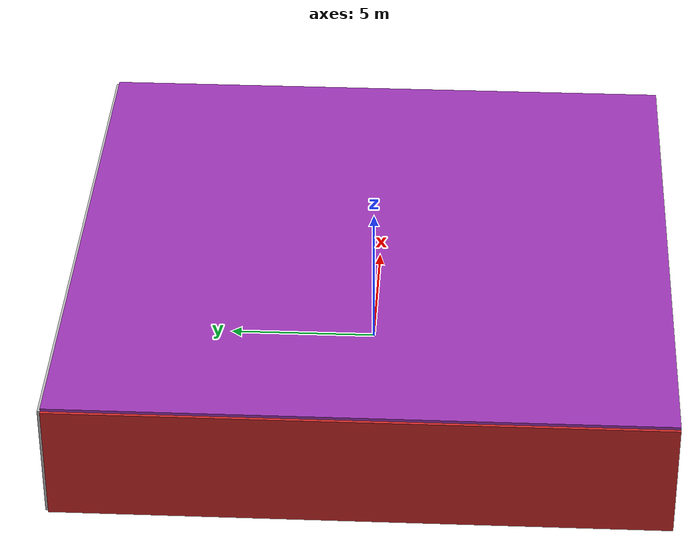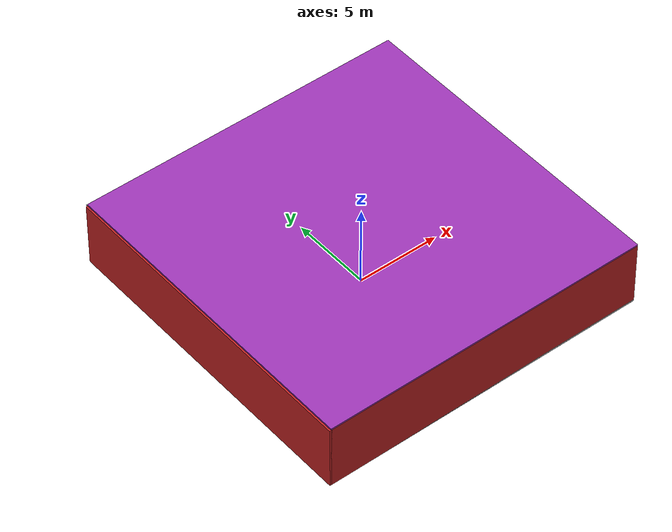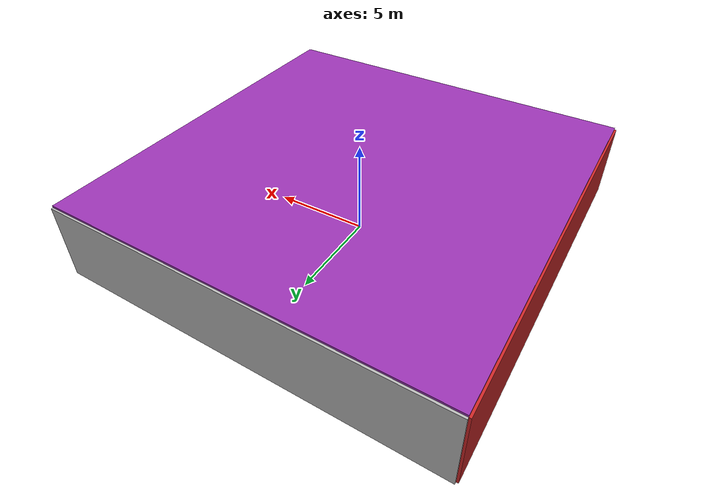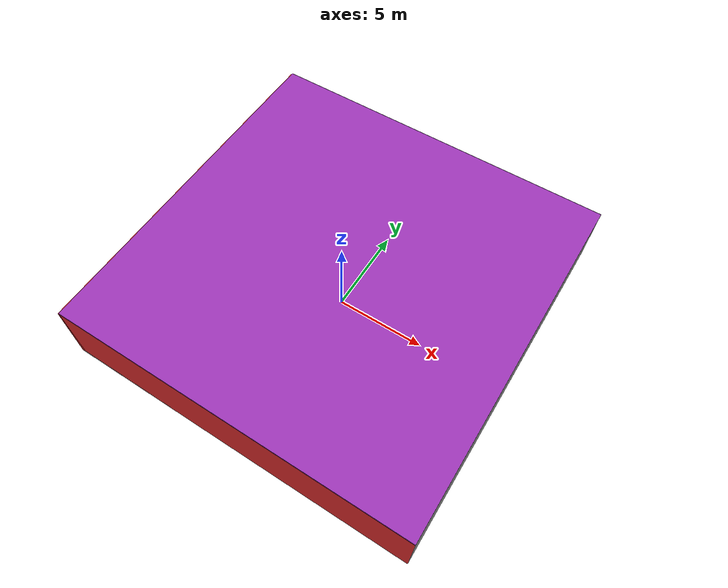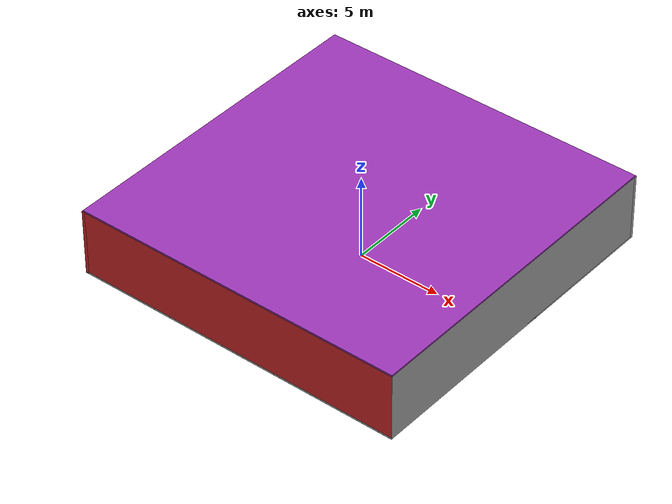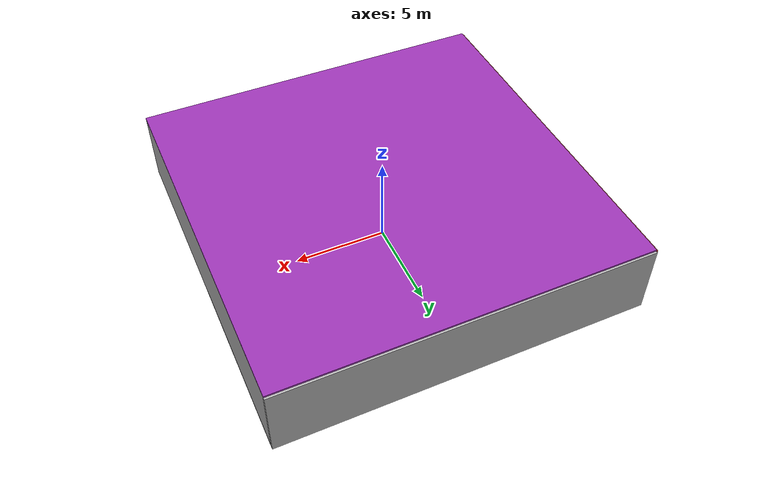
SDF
<sdf version="1.4">
 <world name="default">
  <physics type="ode">
   <max_step_size>0.001</max_step_size>
   <real_time_factor>1</real_time_factor>
   <real_time_update_rate>1000</real_time_update_rate>
   <gravity>0 0 -9.8</gravity>
  </physics>
  <scene><ambient>0.4 0.4 0.4 1</ambient><background>0.7 0.7 0.7 1</background><shadows>1</shadows></scene>
  <model name="Surrounding">
   <static>1</static>
   <link name="Ceiling">
    <collision name="Ceiling_Collision"><geometry><box><size>20 20 0.1</size></box></geometry></collision>
    <visual name="Ceiling_Visual">
     <geometry><box><size>20 20 0.1</size></box></geometry>
     <material>
      <script><uri>file://media/materials/scripts/gazebo.material</uri><name>Gazebo/PurpleGlow</name></script>
     </material>
    </visual>
    <pose>0 0 4.05 0 0 0</pose>
   </link>
   <link name="Wall_South">
    <collision name="Wall_South_Collision">
     <geometry><box><size>20 0 4</size></box></geometry>
     <pose>0 0 2 0 -0 0</pose>
    </collision>
    <visual name="Wall_South_Visual">
     <pose>0 0 2 0 -0 0</pose>
     <geometry><box><size>20 0 4</size></box></geometry>
     <material>
      <script><uri>file://media/materials/scripts/gazebo.material</uri><name>Gazebo/Red</name></script>
     </material>
    </visual>
    <velocity_decay><linear>0</linear><angular>0</angular></velocity_decay>
    <pose>0 -10 0 0 -0 0</pose>
   </link>
   <link name="Wall_East">
    <collision name="Wall_21_Collision">
     <geometry><box><size>20 0 4</size></box></geometry>
     <pose>0 0 2 0 -0 0</pose>
    </collision>
    <visual name="Wall_21_Visual">
     <pose>0 0 2 0 -0 0</pose>
     <geometry><box><size>20 0 4</size></box></geometry>
     <material>
      <script><uri>file://media/materials/scripts/gazebo.material</uri><name>Gazebo/Pioneer2Body</name></script>
     </material>
    </visual>
    <velocity_decay><linear>0</linear><angular>0</angular></velocity_decay>
    <pose>10 0 0 0 -0 1.5708</pose>
   </link>
   <link name="Wall_North">
    <collision name="Wall_22_Collision">
     <geometry><box><size>20 0.2 4</size></box></geometry>
     <pose>0 0 2 0 -0 0</pose>
    </collision>
    <visual name="Wall_22_Visual">
     <pose>0 0 2 0 -0 0</pose>
     <geometry><box><size>20 0.2 4</size></box></geometry>
     <material>
      <script><uri>file://media/materials/scripts/gazebo.material</uri><name>Gazebo/Pioneer2Body</name></script>
     </material>
    </visual>
    <velocity_decay><linear>0</linear><angular>0</angular></velocity_decay>
    <pose>0 10 0 0 -0 0</pose>
   </link>
   <link name="Wall_West">
    <collision name="Wall_23_Collision">
     <geometry><box><size>20 0.2 4</size></box></geometry>
     <pose>0 0 2 0 -0 0</pose>
    </collision>
    <visual name="Wall_23_Visual">
     <pose>0 0 2 0 -0 0</pose>
     <geometry><box><size>20 0.2 4</size></box></geometry>
     <material>
      <script><uri>file://media/materials/scripts/gazebo.material</uri><name>Gazebo/RedGlow</name></script>
     </material>
    </visual>
    <velocity_decay><linear>0</linear><angular>0</angular></velocity_decay>
    <pose>-10 0 0 0 0 -1.5708</pose>
   </link>
   <link name="Ground_link">
    <collision name="collision">
     <pose>0 0 .05 0 -0 0</pose>
     <geometry><box><size>20 20 0.1</size></box></geometry>
    </collision>
    <visual name="visual">
     <pose>0 0 .05 0 -0 0</pose>
     <geometry><box><size>20 20 0.1</size></box></geometry>
     <material>
      <script><uri>file://media/materials/scripts/gazebo.material</uri><name>Gazebo/CloudySky</name></script>
     </material>
    </visual>
   </link>
   <static>1</static>
  </model>
  <spherical_coordinates>
   <surface_model>EARTH_WGS84</surface_model>
   <latitude_deg>0</latitude_deg>
   <longitude_deg>0</longitude_deg>
   <elevation>0</elevation>
   <heading_deg>0</heading_deg>
  </spherical_coordinates>
  <light name="lightball_0" type="diffuse">
   <diffuse>0.8 0.8 0.8 1</diffuse>
   <specular>0.2 0.2 0.2 1</specular>
   <attenuation>
    <range>100</range>
    <constant>0.7</constant>
    <linear>0.01</linear>
    <quadratic>0.001</quadratic>
   </attenuation>
   <direction>-0.5 0.1 -0.9</direction>
   <pose>-1.57015566383 -0.627600583861 2.82952394799 0 0 0</pose>
  </light>
  <light name="lightball_1" type="diffuse">
   <diffuse>0.8 0.8 0.8 1</diffuse>
   <specular>0.2 0.2 0.2 1</specular>
   <attenuation>
    <range>100</range>
    <constant>0.7</constant>
    <linear>0.01</linear>
    <quadratic>0.001</quadratic>
   </attenuation>
   <direction>-0.5 0.1 -0.9</direction>
   <pose>-6.54540657948 3.73975154319 3.07185542808 0 0 0</pose>
  </light>
  <light name="lightball_2" type="diffuse">
   <diffuse>0.8 0.8 0.8 1</diffuse>
   <specular>0.2 0.2 0.2 1</specular>
   <attenuation>
    <range>100</range>
    <constant>0.7</constant>
    <linear>0.01</linear>
    <quadratic>0.001</quadratic>
   </attenuation>
   <direction>-0.5 0.1 -0.9</direction>
   <pose>1.90729185153 0.548144415849 2.17242869062 0 0 0</pose>
  </light>
  <light name="lightball_3" type="diffuse">
   <diffuse>0.8 0.8 0.8 1</diffuse>
   <specular>0.2 0.2 0.2 1</specular>
   <attenuation>
    <range>100</range>
    <constant>0.7</constant>
    <linear>0.01</linear>
    <quadratic>0.001</quadratic>
   </attenuation>
   <direction>-0.5 0.1 -0.9</direction>
   <pose>4.02318149444 -4.22561937383 0.774344688395 0 0 0</pose>
  </light>
  <include><uri>model://cabinet</uri><pose>-6.7453710752 -4.11502978925 0 0 0 1.58683391974</pose></include>
  <include>
   <uri>model://textured_shapes</uri>
   <pose>-1.42108064902 1.94973149716 0 0 0 0.111787628685</pose>
  </include>
  <include><uri>model://table</uri><pose>1.09596841941 5.12305537652 0 0 0 2.61324811277</pose></include>
  <include>
   <uri>model://construction_cone</uri>
   <pose>1.91371186131 7.57809168568 0 0 0 0.0142127491015</pose>
  </include>
  <include>
   <uri>model://textured_shapes</uri>
   <pose>3.98268754775 -6.74912755654 0 0 0 1.31142138198</pose>
  </include>
  <include><uri>model://cabinet</uri><pose>5.24008828502 7.54379888707 0 0 0 1.86743783254</pose></include>
  <include>
   <uri>model://robocup_3Dsim_goal</uri>
   <pose>7.4527373637 -4.06436830562 0 0 0 2.71705635266</pose>
  </include>
  <include>
   <uri>model://construction_cone</uri>
   <pose>8.08524084754 1.56320882617 0 0 0 1.58210167667</pose>
  </include>
 </world>
</sdf>

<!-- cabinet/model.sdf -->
<sdf version="1.5">
  <model name="cabinet">
    <static>true</static>
    <link name="cabinet_bottom_plate">
      <inertial>
        <pose>0 0 -1 0 0 0</pose>
        <inertia>
          <ixx>2.050000</ixx>
          <ixy>0</ixy>
          <ixz>0</ixz>
          <iyy>2.050000</iyy>
          <iyz>0</iyz>
          <izz>2.050000</izz>
        </inertia>
        <mass>25.000000</mass>
      </inertial>
      <collision name="cabinet_bottom_plate_geom">
        <pose>0 0 0.010000 0 0 0</pose>
        <geometry>
          <box>
            <size>0.450000 0.450000 0.020000</size>
          </box>
        </geometry>
      </collision>
      <visual name="cabinet_bottom_plate_geom_visual">
        <pose>0 0 0.010000 0 0 0</pose>
        <geometry>
          <box>
            <size>0.450000 0.450000 0.020000</size>
          </box>
        </geometry>
        <material>
          <script>
            <uri>model://media/materials/scripts/gazebo.material</uri>
            <name>Gazebo/Wood</name>
          </script>
        </material>
      </visual>
      <collision name="cabinet_bottom_plate_geom_cabinet_back_plate">
        <pose>0.235000 0 0.510000 0 0 0</pose>
        <geometry>
          <box>
            <size>0.020000 0.450000 1.020000</size>
          </box>
        </geometry>
      </collision>
      <visual name="cabinet_bottom_plate_geom_cabinet_back_plate_visual">
        <pose>0.235000 0 0.510000 0 0 0</pose>
        <geometry>
          <box>
            <size>0.020000 0.450000 1.020000</size>
          </box>
        </geometry>
        <material>
          <script>
            <uri>model://media/materials/scripts/gazebo.material</uri>
            <name>Gazebo/Wood</name>
          </script>
        </material>
      </visual>
      <collision name="cabinet_bottom_plate_geom_cabinet_left_plate">
        <pose>0 0.235000 0.510000 0 0 0</pose>
        <geometry>
          <box>
            <size>0.450000 0.020000 1.020000</size>
          </box>
        </geometry>
      </collision>
      <visual name="cabinet_bottom_plate_geom_cabinet_left_plate_visual">
        <pose>0 0.235000 0.510000 0 0 0</pose>
        <geometry>
          <box>
            <size>0.450000 0.020000 1.020000</size>
          </box>
        </geometry>
        <material>
          <script>
            <uri>model://media/materials/scripts/gazebo.material</uri>
            <name>Gazebo/Wood</name>
          </script>
        </material>
      </visual>
      <collision name="cabinet_bottom_plate_geom_cabinet_middle_plate">
        <pose>0 0 0.510000 0 0 0</pose>
        <geometry>
          <box>
            <size>0.450000 0.450000 0.020000</size>
          </box>
        </geometry>
      </collision>
      <visual name="cabinet_bottom_plate_geom_cabinet_middle_plate_visual">
        <pose>0 0 0.510000 0 0 0</pose>
        <geometry>
          <box>
            <size>0.450000 0.450000 0.020000</size>
          </box>
        </geometry>
        <material>
          <script>
            <uri>model://media/materials/scripts/gazebo.material</uri>
            <name>Gazebo/Wood</name>
          </script>
        </material>
      </visual>
      <collision name="cabinet_bottom_plate_geom_cabinet_right_plate">
        <pose>0 -0.235000 0.510000 0 0 0</pose>
        <geometry>
          <box>
            <size>0.450000 0.020000 1.020000</size>
          </box>
        </geometry>
      </collision>
      <visual name="cabinet_bottom_plate_geom_cabinet_right_plate_visual">
        <pose>0 -0.235000 0.510000 0 0 0</pose>
        <geometry>
          <box>
            <size>0.450000 0.020000 1.020000</size>
          </box>
        </geometry>
        <material>
          <script>
            <uri>model://media/materials/scripts/gazebo.material</uri>
            <name>Gazebo/Wood</name>
          </script>
        </material>
      </visual>
      <collision name="cabinet_bottom_plate_geom_cabinet_top_plate">
        <pose>0 0 1.010000 0 0 0</pose>
        <geometry>
          <box>
            <size>0.450000 0.450000 0.020000</size>
          </box>
        </geometry>
      </collision>
      <visual name="cabinet_bottom_plate_geom_cabinet_top_plate_visual">
        <pose>0 0 1.010000 0 0 0</pose>
        <geometry>
          <box>
            <size>0.450000 0.450000 0.020000</size>
          </box>
        </geometry>
        <material>
          <script>
            <uri>model://media/materials/scripts/gazebo.material</uri>
            <name>Gazebo/Wood</name>
          </script>
        </material>
      </visual>
    </link>
  </model>
</sdf>

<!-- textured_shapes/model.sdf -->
<sdf version="1.6">
  <model name="textured_shapes">
    <pose>0 0 0.5 0 0 0</pose>
    <link name="box">
      <pose>0 -1.5 0 0 0 0</pose>
      <collision name="collision">
        <geometry>
          <box>
            <size>1 1 1</size>
          </box>
        </geometry>
      </collision>
      <visual name="visual">
        <geometry>
          <box>
            <size>1 1 1</size>
          </box>
        </geometry>
        <material>
          <script>
            <uri>model://../model_source/models/textured_shapes/materials/scripts</uri>
            <uri>model://../model_source/models/textured_shapes/materials/textures</uri>
            <name>TexturedShape/Squares</name>
          </script>
        </material>
      </visual>
    </link>
    <link name="sphere">
      <collision name="collision">
        <geometry>
          <sphere>
            <radius>0.5</radius>
          </sphere>
        </geometry>
      </collision>
      <visual name="visual">
        <geometry>
          <sphere>
            <radius>0.5</radius>
          </sphere>
        </geometry>
        <material>
          <script>
            <uri>model://../model_source/models/textured_shapes/materials/scripts</uri>
            <uri>model://../model_source/models/textured_shapes/materials/textures</uri>
            <name>TexturedShape/Squares</name>
          </script>
        </material>
      </visual>
    </link>
    <link name="cylinder">
      <pose>0 1.5 0 0 0 0</pose>
      <collision name="collision">
        <geometry>
          <cylinder>
            <radius>0.5</radius>
            <length>1</length>
          </cylinder>
        </geometry>
      </collision>
      <visual name="visual">
        <geometry>
          <cylinder>
            <radius>0.5</radius>
            <length>1</length>
          </cylinder>
        </geometry>
        <material>
          <script>
            <uri>model://../model_source/models/textured_shapes/materials/scripts</uri>
            <uri>model://../model_source/models/textured_shapes/materials/textures</uri>
            <name>TexturedShape/Squares</name>
          </script>
        </material>
      </visual>
    </link>
  </model>
</sdf>

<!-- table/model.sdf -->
<sdf version="1.5">
  <model name="table">
    <static>true</static>
    <link name="link">
      <collision name="surface">
        <pose>0 0 1.0 0 0 0</pose>
        <geometry>
          <box>
            <size>1.5 0.8 0.03</size>
          </box>
        </geometry>
        <surface>
          <friction>
            <ode>
              <mu>0.6</mu>
              <mu2>0.6</mu2>
            </ode>
          </friction>
        </surface>
      </collision>
      <visual name="visual1">
        <pose>0 0 1.0 0 0 0</pose>
        <geometry>
          <box>
            <size>1.5 0.8 0.03</size>
          </box>
        </geometry>
        <material>
          <script>
            <uri>model://media/materials/scripts/gazebo.material</uri>
            <name>Gazebo/Wood</name>
          </script>
        </material>
      </visual>
      <collision name="front_left_leg">
        <pose>0.68 0.38 0.5 0 0 0</pose>
        <geometry>
          <cylinder>
            <radius>0.02</radius>
            <length>1.0</length>
          </cylinder>
        </geometry>
      </collision>
      <visual name="front_left_leg">
        <pose>0.68 0.38 0.5 0 0 0</pose>
        <geometry>
          <cylinder>
            <radius>0.02</radius>
            <length>1.0</length>
          </cylinder>
        </geometry>
        <material>
          <script>
            <uri>model://media/materials/scripts/gazebo.material</uri>
            <name>Gazebo/Grey</name>
          </script>
        </material>
      </visual>
      <collision name="front_right_leg">
        <pose>0.68 -0.38 0.5 0 0 0</pose>
        <geometry>
          <cylinder>
            <radius>0.02</radius>
            <length>1.0</length>
          </cylinder>
        </geometry>
      </collision>
      <visual name="front_right_leg">
        <pose>0.68 -0.38 0.5 0 0 0</pose>
        <geometry>
          <cylinder>
            <radius>0.02</radius>
            <length>1.0</length>
          </cylinder>
        </geometry>
        <material>
          <script>
            <uri>model://media/materials/scripts/gazebo.material</uri>
            <name>Gazebo/Grey</name>
          </script>
        </material>
      </visual>
      <collision name="back_right_leg">
        <pose>-0.68 -0.38 0.5 0 0 0</pose>
        <geometry>
          <cylinder>
            <radius>0.02</radius>
            <length>1.0</length>
          </cylinder>
        </geometry>
      </collision>
      <visual name="back_right_leg">
        <pose>-0.68 -0.38 0.5 0 0 0</pose>
        <geometry>
          <cylinder>
            <radius>0.02</radius>
            <length>1.0</length>
          </cylinder>
        </geometry>
        <material>
          <script>
            <uri>model://media/materials/scripts/gazebo.material</uri>
            <name>Gazebo/Grey</name>
          </script>
        </material>
      </visual>
      <collision name="back_left_leg">
        <pose>-0.68 0.38 0.5 0 0 0</pose>
        <geometry>
          <cylinder>
            <radius>0.02</radius>
            <length>1.0</length>
          </cylinder>
        </geometry>
      </collision>
      <visual name="back_left_leg">
        <pose>-0.68 0.38 0.5 0 0 0</pose>
        <geometry>
          <cylinder>
            <radius>0.02</radius>
            <length>1.0</length>
          </cylinder>
        </geometry>
        <material>
          <script>
            <uri>model://media/materials/scripts/gazebo.material</uri>
            <name>Gazebo/Grey</name>
          </script>
        </material>
      </visual>
    </link>
  </model>
</sdf>

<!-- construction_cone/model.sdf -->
<sdf version="1.5">
  <model name="Construction Cone">
    <link name="link">
      <collision name="collision">
        <geometry>
          <mesh>
            <scale>10 10 10</scale>
            <uri>file://isr-testbed/construction_cone/meshes/construction_cone.dae</uri>
          </mesh>
        </geometry>
      </collision>
      <visual name="visual">
        <geometry>
          <mesh>
            <scale>10 10 10</scale>
            <uri>file://isr-testbed/construction_cone/meshes/construction_cone.dae</uri>
          </mesh>
        </geometry>
      </visual>
    </link>
  </model>
</sdf>

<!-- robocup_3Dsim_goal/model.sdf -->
<sdf version="1.5">
  <model name="robocup_3d_goal">
    <static>true</static>
    <link name="left_post">
      <pose>0 1.05 0.45 0 0 0</pose>
      <collision name="collision">
        <geometry>
          <cylinder>
            <radius>0.05</radius>
            <length>0.9</length>
          </cylinder>
        </geometry>
      </collision>
      <visual name="visual">
        <geometry>
          <cylinder>
            <radius>0.05</radius>
            <length>0.9</length>
          </cylinder>
        </geometry>
        <material>
          <script>
            <uri>file://media/materials/scripts/gazebo.material</uri>
            <name>Gazebo/ZincYellow</name>
          </script>
        </material>
      </visual>
    </link>
    <link name="left_support_horiz_lower">
      <pose>0.30 1.05 0.01 0 0 0</pose>
      <collision name="collision">
        <geometry>
          <box>
            <size>0.50 0.02 0.02</size>
          </box>
        </geometry>
      </collision>
      <visual name="visual">
        <geometry>
          <box>
            <size>0.50 0.02 0.02</size>
          </box>
        </geometry>
        <material>
          <script>
            <uri>file://media/materials/scripts/gazebo.material</uri>
            <name>Gazebo/White</name>
          </script>
        </material>
      </visual>
    </link>
    <link name="left_support_horiz_upper">
      <pose>0.30 1.05 0.79 0 0 0</pose>
      <collision name="collision">
        <geometry>
          <box>
            <size>0.50 0.02 0.02</size>
          </box>
        </geometry>
      </collision>
      <visual name="visual">
        <geometry>
          <box>
            <size>0.50 0.02 0.02</size>
          </box>
        </geometry>
        <material>
          <script>
            <uri>file://media/materials/scripts/gazebo.material</uri>
            <name>Gazebo/White</name>
          </script>
        </material>
      </visual>
    </link>
    <link name="left_support_vertical">
      <pose>0.56 1.05 0.4 0 1.5708 0</pose>
      <collision name="collision">
        <geometry>
          <box>
            <size>0.80 0.02 0.02</size>
          </box>
        </geometry>
      </collision>
      <visual name="visual">
        <geometry>
          <box>
            <size>0.80 0.02 0.02</size>
          </box>
        </geometry>
        <material>
          <script>
            <uri>file://media/materials/scripts/gazebo.material</uri>
            <name>Gazebo/White</name>
          </script>
        </material>
      </visual>
    </link>
    <link name="right_support_horiz_lower">
      <pose>0.30 -1.05 0.01 0 0 0</pose>
      <collision name="collision">
        <geometry>
          <box>
            <size>0.50 0.02 0.02</size>
          </box>
        </geometry>
      </collision>
      <visual name="visual">
        <geometry>
          <box>
            <size>0.50 0.02 0.02</size>
          </box>
        </geometry>
        <material>
          <script>
            <uri>file://media/materials/scripts/gazebo.material</uri>
            <name>Gazebo/White</name>
          </script>
        </material>
      </visual>
    </link>
    <link name="right_support_horiz_upper">
      <pose>0.30 -1.05 0.79 0 0 0</pose>
      <collision name="collision">
        <geometry>
          <box>
            <size>0.50 0.02 0.02</size>
          </box>
        </geometry>
      </collision>
      <visual name="visual">
        <geometry>
          <box>
            <size>0.50 0.02 0.02</size>
          </box>
        </geometry>
        <material>
          <script>
            <uri>file://media/materials/scripts/gazebo.material</uri>
            <name>Gazebo/White</name>
          </script>
        </material>
      </visual>
    </link>
    <link name="right_support_vertical">
      <pose>0.56 -1.05 0.4 0 1.5708 0</pose>
      <collision name="collision">
        <geometry>
          <box>
            <size>0.80 0.02 0.02</size>
          </box>
        </geometry>
      </collision>
      <visual name="visual">
        <geometry>
          <box>
            <size>0.80 0.02 0.02</size>
          </box>
        </geometry>
        <material>
          <script>
            <uri>file://media/materials/scripts/gazebo.material</uri>
            <name>Gazebo/White</name>
          </script>
        </material>
      </visual>
    </link>
    <link name="center_support_horiz_lower">
      <pose>0.56 0 0.01 0 1.5708 0</pose>
      <collision name="collision">
        <geometry>
          <box>
            <size>0.02 2.08 0.02</size>
          </box>
        </geometry>
      </collision>
      <visual name="visual">
        <geometry>
          <box>
            <size>0.02 2.08 0.02</size>
          </box>
        </geometry>
        <material>
          <script>
            <uri>file://media/materials/scripts/gazebo.material</uri>
            <name>Gazebo/White</name>
          </script>
        </material>
      </visual>
    </link>
    <link name="center_support_horiz_upper">
      <pose>0.56 0 0.79 0 1.5708 0</pose>
      <collision name="collision">
        <geometry>
          <box>
            <size>0.02 2.08 0.02</size>
          </box>
        </geometry>
      </collision>
      <visual name="visual">
        <geometry>
          <box>
            <size>0.02 2.08 0.02</size>
          </box>
        </geometry>
        <material>
          <script>
            <uri>file://media/materials/scripts/gazebo.material</uri>
            <name>Gazebo/White</name>
          </script>
        </material>
      </visual>
    </link>
    <link name="right_post">
      <pose>0 -1.05 0.45 0 0 0</pose>
      <collision name="collision">
        <geometry>
          <cylinder>
            <radius>0.05</radius>
            <length>0.9</length>
          </cylinder>
        </geometry>
      </collision>
      <visual name="visual">
        <geometry>
          <cylinder>
            <radius>0.05</radius>
            <length>0.9</length>
          </cylinder>
        </geometry>
        <material>
          <script>
            <uri>file://media/materials/scripts/gazebo.material</uri>
            <name>Gazebo/ZincYellow</name>
          </script>
        </material>
      </visual>
    </link>
    <link name="crossbar">
      <pose>0 0 0.85 1.57 1.57 0</pose>
      <collision name="collision">
        <geometry>
          <cylinder>
            <radius>0.05</radius>
            <length>2.0</length>
          </cylinder>
        </geometry>
      </collision>
      <visual name="visual">
        <geometry>
          <cylinder>
            <radius>0.05</radius>
            <length>2.0</length>
          </cylinder>
        </geometry>
        <material>
          <script>
            <uri>file://media/materials/scripts/gazebo.material</uri>
            <name>Gazebo/ZincYellow</name>
          </script>
        </material>
      </visual>
    </link>
    <link name="center_net">
      <pose>0.56 0 0.40 0 0 0</pose>
      <collision name="collision">
        <geometry>
          <box>
            <size>0.01 2.1 0.80</size>
          </box>
        </geometry>
      </collision>
      <visual name="visual">
        <geometry>
          <box>
            <size>0.01 2.1 0.80</size>
          </box>
        </geometry>
        <material>
          <script>
            <uri>model://../model_source/models/robocup09_spl_field/materials/scripts/</uri>
            <uri>model://../model_source/models/robocup09_spl_field/materials/textures/</uri>
            <name>RoboCup/Net</name>
          </script>
        </material>
      </visual>
    </link>
    <link name="left_net">
      <pose>0.30 1.05 0.40 0 0 0</pose>
      <collision name="collision">
        <geometry>
          <box>
            <size>0.50 0.01 0.76</size>
          </box>
        </geometry>
      </collision>
      <visual name="visual">
        <geometry>
          <box>
            <size>0.50 0.01 0.76</size>
          </box>
        </geometry>
        <material>
          <script>
            <uri>model://../model_source/models/robocup09_spl_field/materials/scripts/</uri>
            <uri>model://../model_source/models/robocup09_spl_field/materials/textures/</uri>
            <name>RoboCup/Net</name>
          </script>
        </material>
      </visual>
    </link>
    <link name="right_net">
      <pose>0.30 -1.05 0.40 0 0 0</pose>
      <collision name="collision">
        <geometry>
          <box>
            <size>0.50 0.01 0.76</size>
          </box>
        </geometry>
      </collision>
      <visual name="visual">
        <geometry>
          <box>
            <size>0.50 0.01 0.76</size>
          </box>
        </geometry>
        <material>
          <script>
            <uri>model://../model_source/models/robocup09_spl_field/materials/scripts/</uri>
            <uri>model://../model_source/models/robocup09_spl_field/materials/textures/</uri>
            <name>RoboCup/Net</name>
          </script>
        </material>
      </visual>
    </link>
  </model>
</sdf>
